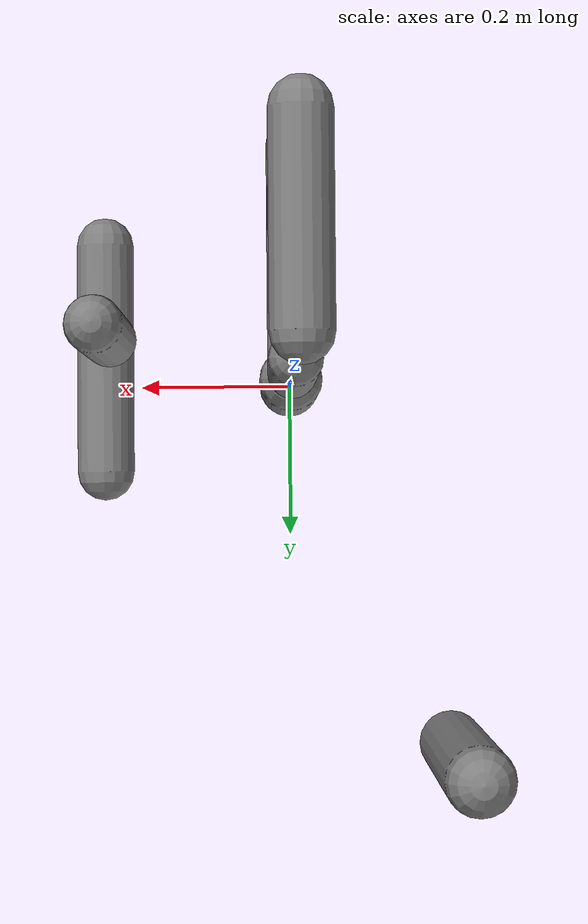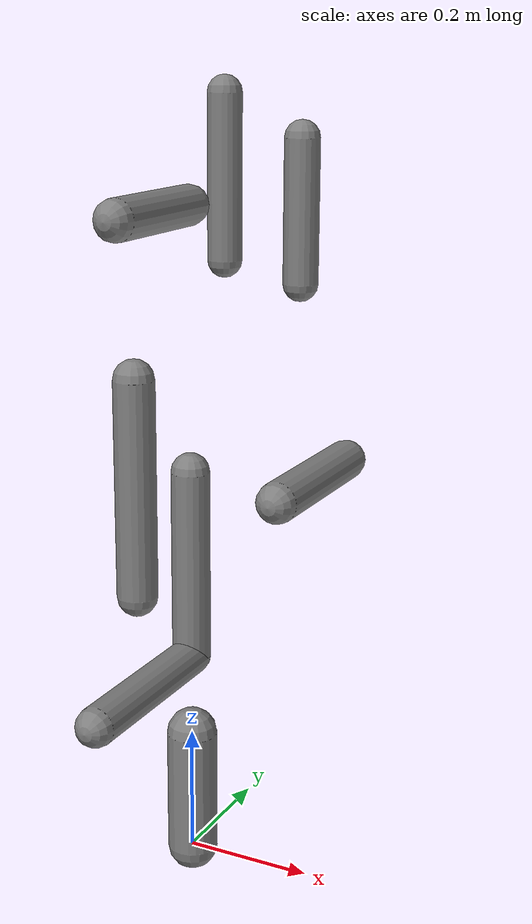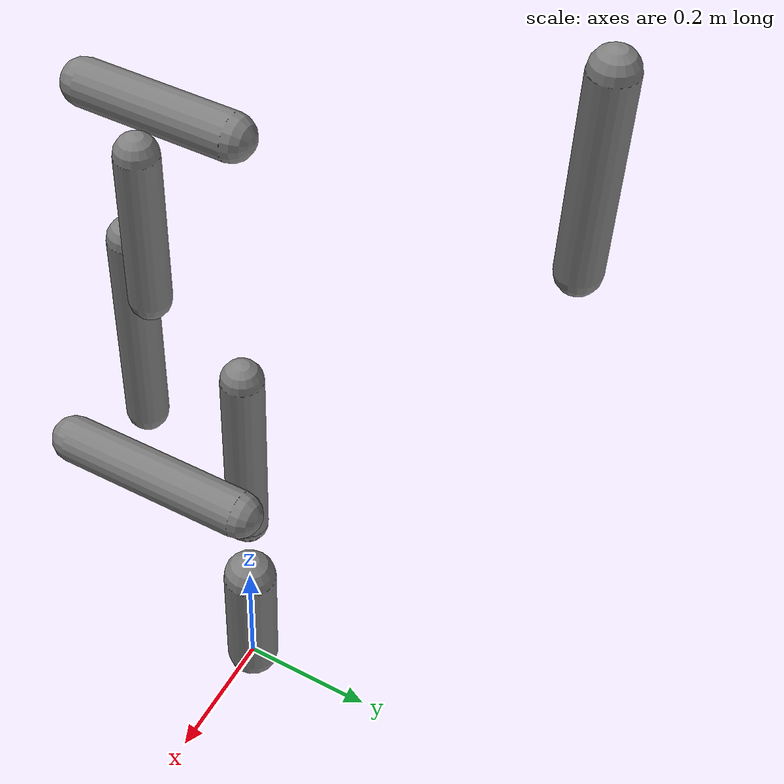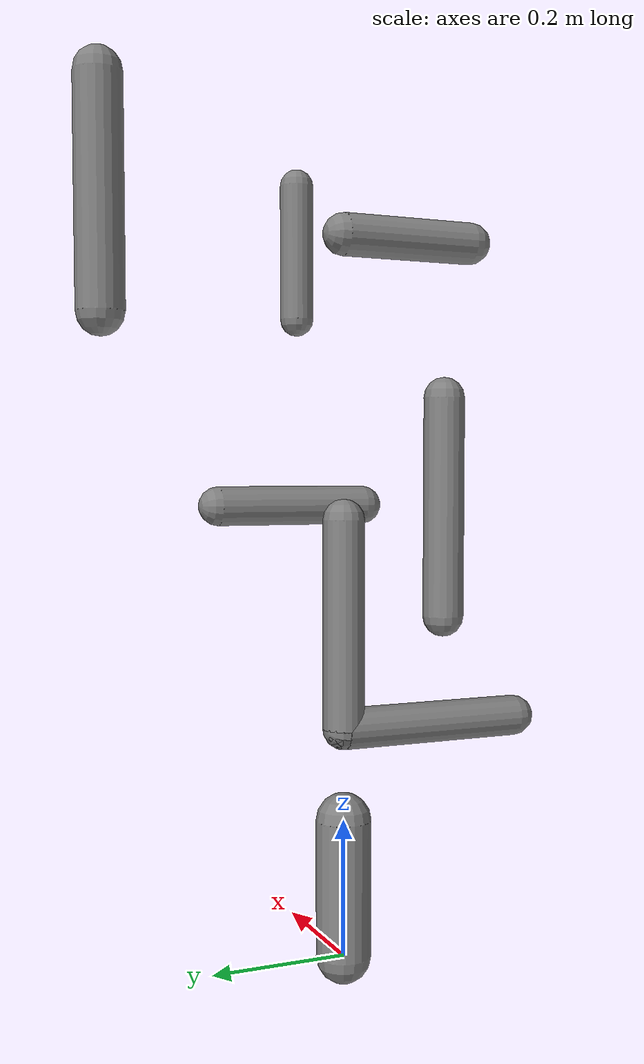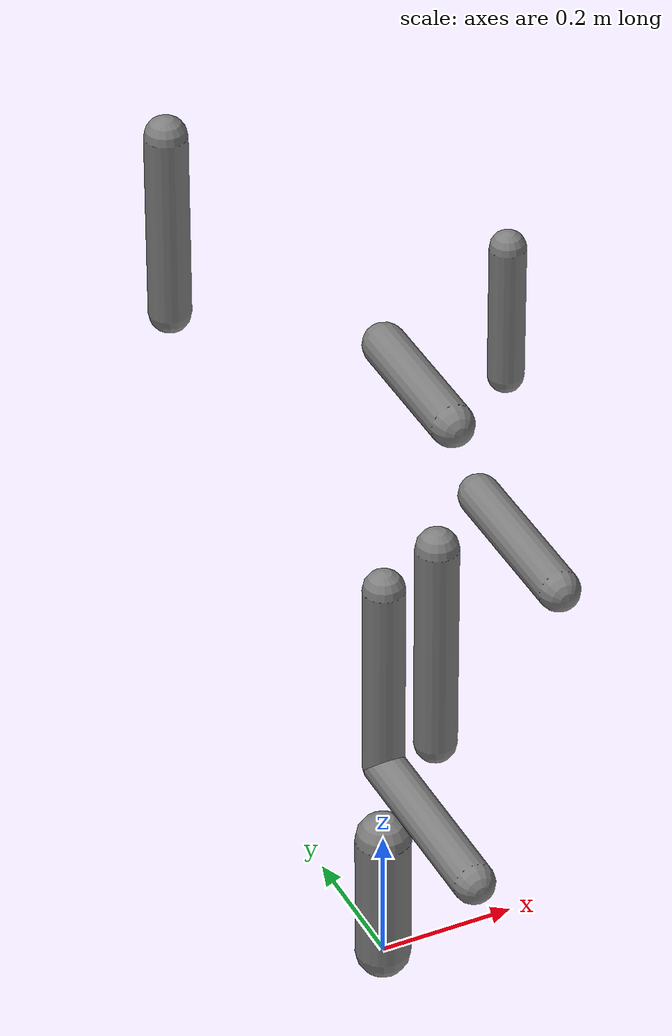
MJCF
<mujoco model="panda">
  <compiler angle="radian"/>

  <worldbody>
    <body name="panda_link0" pos="0 0 0">
      <geom name="panda_link0_collision" type="capsule" size="0.04 0.1" pos="0 0 0.1" contype="1" conaffinity="1"/>

    <body name="panda_link1" pos="0 0 0.333">
      <geom name="panda_link1_collision" type="capsule" size="0.03 0.15" pos="0 0 0.15" contype="1" conaffinity="1"/>
      <inertial pos="0.003875 0.002081 -0.04762" quat="0.711549 0.00634377 -0.0131124 0.702485" mass="4.97068" diaginertia="0.707137 0.703435 0.00852456"/>
      <joint name="panda_joint1" pos="0 0 0" axis="0 0 1" range="-2.8973 2.8973" actuatorfrcrange="-87 87"/>
      <body name="panda_link2" quat="0.707107 -0.707107 0 0">
        <geom name="panda_link2_collision" type="capsule" size="0.03 0.14" pos="0 0 -0.14" contype="1" conaffinity="1"/>
        <inertial pos="-0.003141 -0.02872 0.003495" quat="-0.168175 0.828366 -0.122878 0.520027" mass="0.646926" diaginertia="0.0310326 0.0283001 0.00273425"/>
        <joint name="panda_joint2" pos="0 0 0" axis="0 0 1" range="-1.7628 1.7628" actuatorfrcrange="-87 87"/>
        <body name="panda_link3" pos="0 -0.316 0" quat="0.707107 0.707107 0 0">
          <geom name="panda_link3_collision" type="capsule" size="0.03 0.16" pos="0 -0.16 0" contype="1" conaffinity="1"/>
          <inertial pos="0.027518 0.039252 -0.066502" quat="0.662769 -0.00678331 0.252053 0.705096" mass="3.2286" diaginertia="0.0415014 0.0414793 0.00124635"/>
          <joint name="panda_joint3" pos="0 0 0" axis="0 0 1" range="-2.8973 2.8973" actuatorfrcrange="-87 87"/>
          <body name="panda_link4" pos="0.0825 0 0" quat="0.707107 0.707107 0 0">
            <geom name="panda_link4_collision" type="capsule" size="0.03 0.12" pos="0.12 0 0" contype="1" conaffinity="1"/>
            <inertial pos="-0.05317 0.104419 0.027454" quat="0.65058 0.529822 -0.0962034 0.535518" mass="3.5879" diaginertia="0.0349596 0.0281483 0.0106201"/>
            <joint name="panda_joint4" pos="0 0 0" axis="0 0 1" range="-3.0718 -0.0698" actuatorfrcrange="-87 87"/>
            <body name="panda_link5" pos="-0.0825 0.384 0" quat="0.707107 -0.707107 0 0">
              <geom name="panda_link5_collision" type="capsule" size="0.03 0.14" pos="-0.14 0.38 0" contype="1" conaffinity="1"/>
              <inertial pos="-0.011953 0.041065 -0.038437" quat="0.987313 -0.0121954 0.0719187 -0.141037" mass="1.22595" diaginertia="0.0367625 0.0288531 0.00803437"/>
              <joint name="panda_joint5" pos="0 0 0" axis="0 0 1" range="-2.8973 2.8973" actuatorfrcrange="-12 12"/>
              <body name="panda_link6" quat="0.707107 0.707107 0 0">
                <geom name="panda_link6_collision" type="capsule" size="0.03 0.1" pos="0 0 0.1" contype="1" conaffinity="1"/>
                <inertial pos="0.060149 -0.014117 -0.010517" quat="0.101075 0.59332 0.0287227 0.798079" mass="1.66656" diaginertia="0.00584276 0.00431037 0.00159787"/>
                <joint name="panda_joint6" pos="0 0 0" axis="0 0 1" range="-0.0175 3.7525" actuatorfrcrange="-12 12"/>
                <body name="panda_link7" pos="0.088 0 0" quat="0.707107 0.707107 0 0">
                  <geom name="panda_link7_collision" type="capsule" size="0.025 0.1" pos="0.09 0 0" contype="1" conaffinity="1"/>
                  <inertial pos="0.010517 -0.004252 0.061597" quat="0.992939 -0.0762041 0.0733595 -0.0537067" mass="0.735522" diaginertia="0.0127345 0.0101055 0.00451803"/>
                  <joint name="panda_joint7" pos="0 0 0" axis="0 0 1" range="-2.8973 2.8973" actuatorfrcrange="-12 12"/>
                </body>
              </body>
            </body>
          </body>
        </body>
      </body>
    </body>
    </body>
  </worldbody>

  <actuator>
    <position name="actuator1" joint="panda_joint1" kp="1000" ctrlrange="-2.8973 2.8973"/>
    <position name="actuator2" joint="panda_joint2" kp="1000" ctrlrange="-1.7628 1.7628"/>
    <position name="actuator3" joint="panda_joint3" kp="1000" ctrlrange="-2.8973 2.8973"/>
    <position name="actuator4" joint="panda_joint4" kp="1000" ctrlrange="-3.0718 -0.0698"/>
    <position name="actuator5" joint="panda_joint5" kp="1000" ctrlrange="-2.8973 2.8973"/>
    <position name="actuator6" joint="panda_joint6" kp="1000" ctrlrange="-0.0175 3.7525"/>
    <position name="actuator7" joint="panda_joint7" kp="1000" ctrlrange="-2.8973 2.8973"/>
  </actuator>

  <!-- どうやって作ったか覚えていない -->
  <!-- gpt が作ったやつかも -->
</mujoco>
